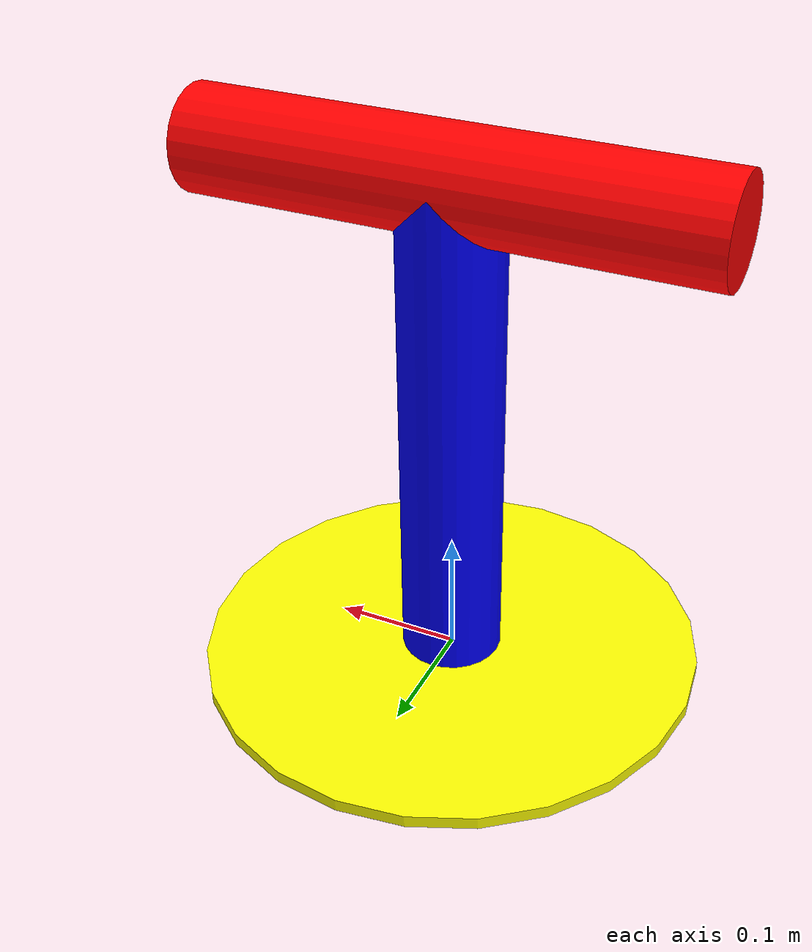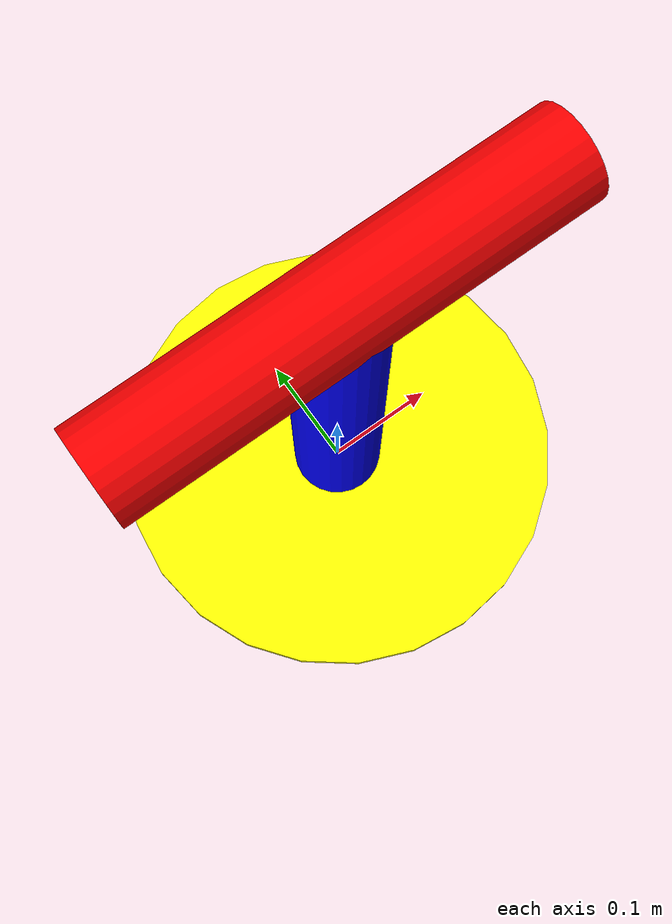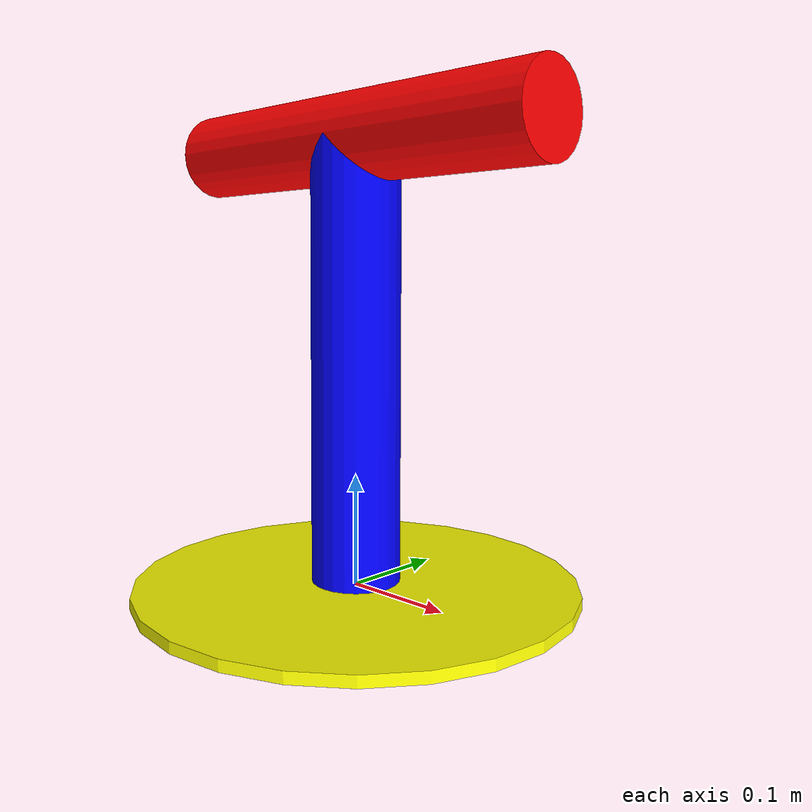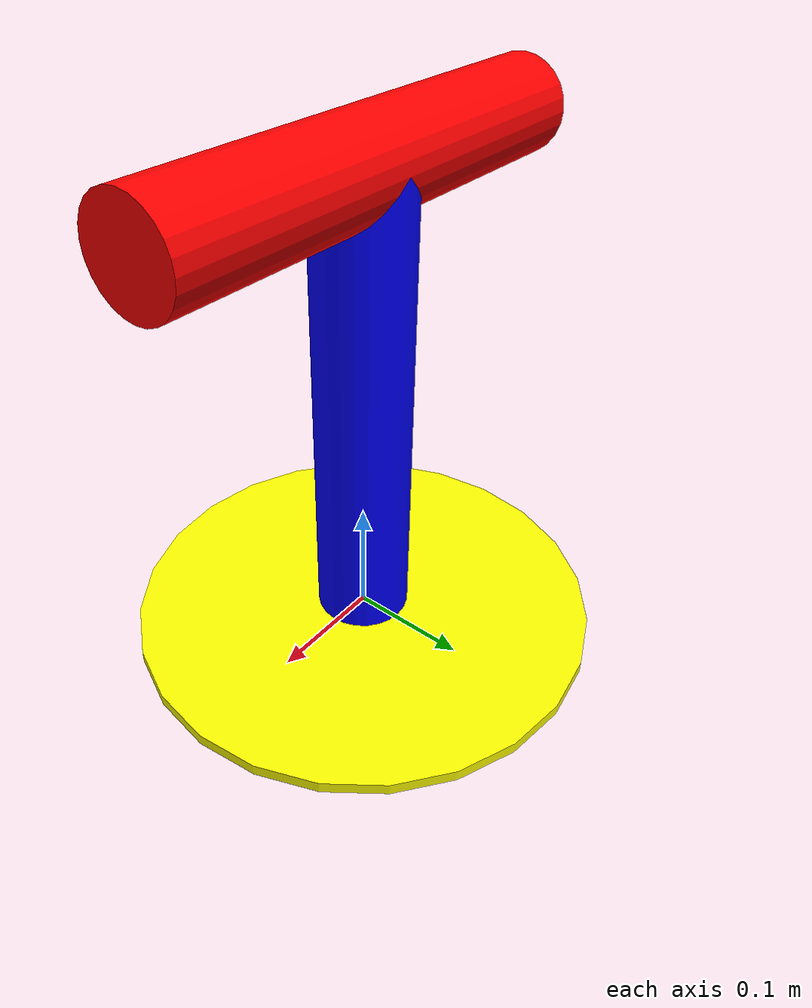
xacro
<?xml version="1.0"?>

<robot name="robotconxacro" xmlns:xacro="http://www.ros.org/wiki/xacro">

  <!-- Color of materials -->
  <material name="yellow">
    <color rgba="1 1 0 1"/>
  </material>
  <material name="blue">
    <color rgba="0 0 1 1"/>
  </material>
  <material name="red">
    <color rgba="1 0 0 1"/>
  </material>

  <xacro:property name="base_radius" value="0.2" />
  <xacro:property name="base_length" value="0.01" />

  <xacro:property name="link_radius" value="0.04" />
  <xacro:property name="pan_link_length" value="0.4" />
  <xacro:property name="tilt_link_length" value="0.4" />

  <link name="base_link">
    <visual>
      <geometry>
        <cylinder length="${base_length}" radius="${base_radius}"/>
      </geometry>
      <origin rpy="0 0 0" xyz="0 0 0"/>
      <material name="yellow" />
    </visual>
  </link>

  <joint name="pan_joint" type="revolute">
    <parent link="base_link"/>
    <child link="pan_link"/>
    <origin xyz="0 0 0"/>
    <axis xyz="0 0 1" />
    <limit effort="300" velocity="0.1" lower="-3.1" upper="3.1"/>
  </joint>

  <link name="pan_link">
    <visual>
      <geometry>
        <cylinder length="${pan_link_length}" radius="${link_radius}"/>
      </geometry>
      <origin rpy="0 0 0" xyz="0 0 ${pan_link_length/2}"/>
      <material name="blue" />
    </visual>
  </link>

  <joint name="tilt_joint" type="revolute">
    <parent link="pan_link"/>
    <child link="tilt_link"/>
    <origin xyz="0 0 ${pan_link_length}"/>
    <axis xyz="0 1 0" />
    <limit effort="300" velocity="0.1" lower="-0.85" upper="0.85"/>
  </joint>

  <link name="tilt_link">
    <visual>
      <geometry>
        <cylinder length="${tilt_link_length}" radius="${link_radius}"/>
      </geometry>
      <origin rpy="0 1.57 0" xyz="0 0 0"/>
      <material name="red" />
    </visual>
  </link>

</robot>
